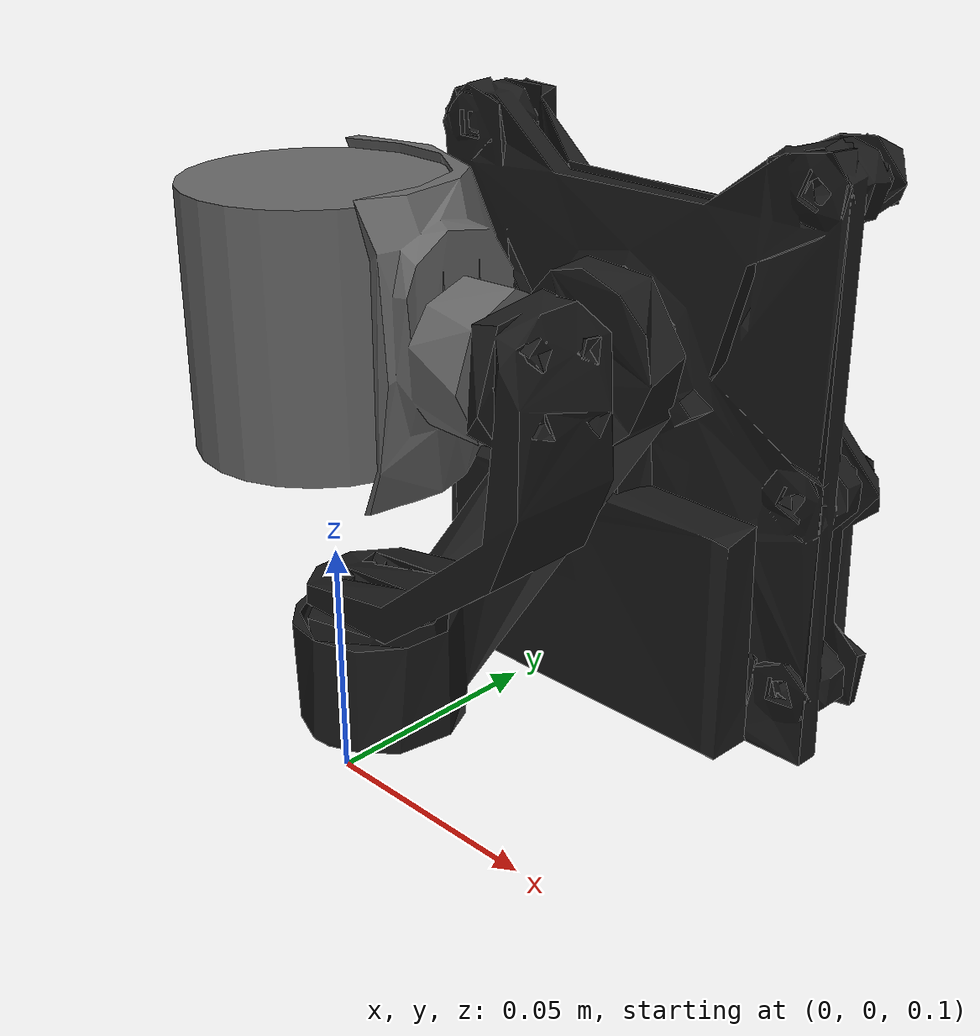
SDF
<?xml version="1.0"?>
<sdf version="1.9">
  <model name="gimbal_small_3d">
    <pose>0 0 0.18 0 0 0</pose>
    <link name="base_link">
      <inertial>
        <mass>0.2</mass>
        <inertia>
          <ixx>0.0001</ixx>
          <ixy>0</ixy>
          <ixz>0</ixz>
          <iyy>0.0001</iyy>
          <iyz>0</iyz>
          <izz>0.0001</izz>
        </inertia>
      </inertial>
      <visual name="base_visual">
        <geometry>
          <mesh>
            <uri>model://gimbal_small_3d/meshes/base_plate.stl</uri>
          </mesh>
        </geometry>
        <material>
          <ambient>0.1 0.1 0.1</ambient>
          <diffuse>0.1 0.1 0.1</diffuse>
          <specular>0.01 0.01 0.01 1.0</specular>
        </material>
      </visual>
      <collision name="base_collision">
        <pose>0.01 0.075 -0.025 0 0 0</pose>
        <geometry>
          <box>
            <size>0.1 0.05 0.15</size>
          </box>
        </geometry>
      </collision>
    </link>

    <link name="yaw_link">
      <inertial>
        <mass>0.01</mass>
        <inertia>
          <ixx>0.00001</ixx>
          <ixy>0</ixy>
          <ixz>0</ixz>
          <iyy>0.00001</iyy>
          <iyz>0</iyz>
          <izz>0.00001</izz>
        </inertia>
      </inertial>
      <visual name="yaw_visual">
        <geometry>
          <mesh>
            <uri>model://gimbal_small_3d/meshes/yaw_arm.stl</uri>
          </mesh>
        </geometry>
        <material>
          <ambient>0.1 0.1 0.1</ambient>
          <diffuse>0.1 0.1 0.1</diffuse>
          <specular>0.01 0.01 0.01 1.0</specular>
        </material>
      </visual>
      <collision name="yaw_collision">
        <geometry>
          <mesh>
            <uri>model://gimbal_small_3d/meshes/yaw_arm.stl</uri>
          </mesh>
        </geometry>
      </collision>
    </link>
    <joint name="yaw_joint" type="revolute">
      <parent>base_link</parent>
      <child>yaw_link</child>
      <axis>
        <xyz>0 1 0</xyz>
        <dynamics>
          <damping>0.01</damping>
        </dynamics>
        <limit>
          <lower>-3.1415926</lower>
          <upper>3.1415926</upper>
        </limit>
      </axis>
      <pose>0.0105 0.065 -0.002 0 0 0</pose>
    </joint>

    <link name="roll_link">
      <inertial>
        <mass>0.01</mass>
        <inertia>
          <ixx>0.00001</ixx>
          <ixy>0</ixy>
          <ixz>0</ixz>
          <iyy>0.00001</iyy>
          <iyz>0</iyz>
          <izz>0.00001</izz>
        </inertia>
      </inertial>
      <visual name="roll_visual">
        <geometry>
          <mesh>
            <uri>model://gimbal_small_3d/meshes/roll_arm.stl</uri>
          </mesh>
        </geometry>
        <material>
          <ambient>0.1 0.1 0.1</ambient>
          <diffuse>0.1 0.1 0.1</diffuse>
          <specular>0.01 0.01 0.01 1.0</specular>
        </material>
      </visual>
      <collision name="roll_collision">
        <geometry>
          <mesh>
            <uri>model://gimbal_small_3d/meshes/roll_arm.stl</uri>
          </mesh>
        </geometry>
      </collision>
    </link>
    <joint name="roll_joint" type="revolute">
      <parent>yaw_link</parent>
      <child>roll_link</child>
      <axis>
        <xyz>0 0 1</xyz>
        <dynamics>
          <damping>0.01</damping>
        </dynamics>
        <limit>
          <lower>-3.1415926</lower>
          <upper>3.1415926</upper>
        </limit>
      </axis>
      <pose>0.0099 0.002 -0.05 0 0 0</pose>
    </joint>

    <link name="pitch_link">
      <inertial>
        <mass>0.01</mass>
        <inertia>
          <ixx>0.00001</ixx>
          <ixy>0</ixy>
          <ixz>0</ixz>
          <iyy>0.00001</iyy>
          <iyz>0</iyz>
          <izz>0.00001</izz>
        </inertia>
      </inertial>
      <visual name="pitch_visual">
        <pose>0 0 0 0 0 0</pose>
        <geometry>
          <mesh>
            <uri>model://gimbal_small_3d/meshes/camera_enclosure.stl</uri>
          </mesh>
        </geometry>
        <material>
          <ambient>0.4 0.4 0.4</ambient>
          <diffuse>0.4 0.4 0.4</diffuse>
          <specular>0.1 0.1 0.1 1.0</specular>
        </material>
      </visual>
      <collision name="pitch_collision">
        <pose>0 0 0 0 0 0</pose>
        <geometry>
          <mesh>
            <uri>model://gimbal_small_3d/meshes/camera_enclosure.stl</uri>
          </mesh>
        </geometry>
      </collision>
      <visual name="camera_visual">
        <pose>0 0 0.02 0 0 0</pose>
        <geometry>
          <cylinder>
            <radius>0.025</radius>
            <length>0.050</length>
          </cylinder>
        </geometry>
        <material>
          <ambient>0.4 0.4 0.4</ambient>
          <diffuse>0.4 0.4 0.4</diffuse>
          <specular>0.1 0.1 0.1 1.0</specular>
        </material>
      </visual>
      <collision name="camera_collision">
        <pose>0 0 0.02 0 0 0</pose>
        <geometry>
          <cylinder>
            <radius>0.025</radius>
            <length>0.050</length>
          </cylinder>
        </geometry>
      </collision>
      <sensor name="camera" type="camera">
        <gz_frame_id>pitch_link</gz_frame_id>
        <pose>0 0 0 -1.57 -1.57 0</pose>
        <camera>
          <horizontal_fov>2.0</horizontal_fov>
          <image>
            <width>640</width>
            <height>480</height>
          </image>
          <clip>
            <near>0.05</near>
            <far>15000</far>
          </clip>
        </camera>
        <always_on>1</always_on>
        <update_rate>10</update_rate>
        <visualize>1</visualize>

        <plugin filename="CameraZoomPlugin"
            name="CameraZoomPlugin">
          <max_zoom>125.0</max_zoom>
          <slew_rate>0.42514285714</slew_rate>
        </plugin>

        <plugin name="GstCameraPlugin"
            filename="GstCameraPlugin">
          <udp_host>127.0.0.1</udp_host>
          <udp_port>5600</udp_port>
          <use_basic_pipeline>true</use_basic_pipeline>
          <use_cuda>false</use_cuda>
        </plugin>

      </sensor>
    </link>
    <joint name="pitch_joint" type="revolute">
      <parent>roll_link</parent>
      <child>pitch_link</child>
      <axis>
        <xyz>1 0 0</xyz>
        <dynamics>
          <damping>0.01</damping>
        </dynamics>
        <limit>
          <lower>-3.1415926</lower>
          <upper>3.1415926</upper>
        </limit>
      </axis>
      <pose>0.045 0.0021 0.0199 0 0 0</pose>
    </joint>
  </model>
</sdf>
